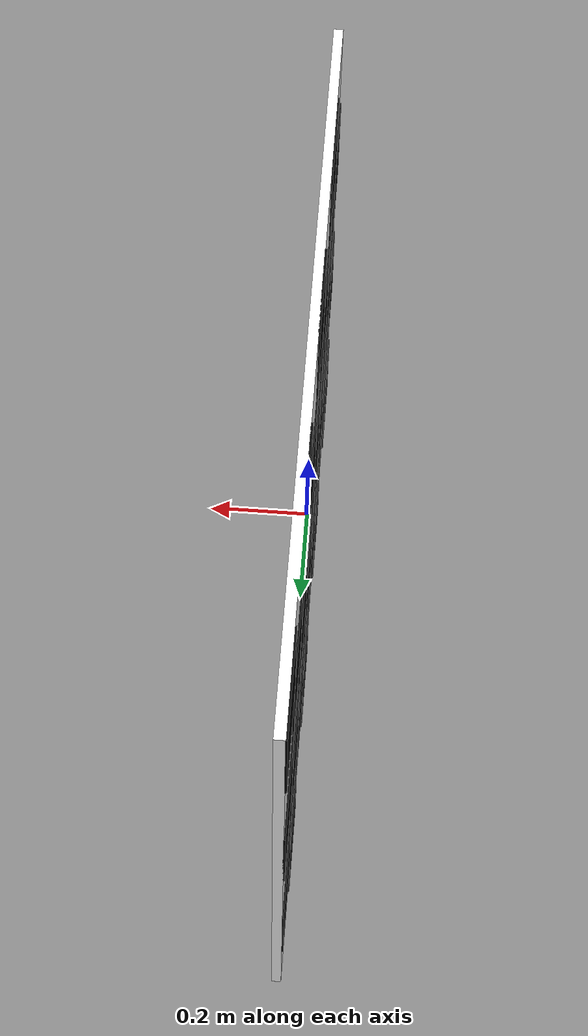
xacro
<?xml version="1.0"?>
<!-- The Gazebo model name is assigned by spawn_model; keep direct xacro usable. -->
<robot xmlns:xacro="http://www.ros.org/wiki/xacro" name="intrinsic_checkerboard">
  <xacro:arg name="model_name" default="intrinsic_checkerboard"/>
  <xacro:property name="s" value="0.20"/>
  <xacro:macro name="black_square" params="column row">
    <link name="checker_black_${column}_${row}">
      <inertial>
        <mass value="0.001"/>
        <inertia ixx="0.00000667" ixy="0" ixz="0"
                 iyy="0.00000334" iyz="0" izz="0.00000334"/>
      </inertial>
      <visual>
        <geometry><box size="0.004 ${s} ${s}"/></geometry>
        <material name="black"><color rgba="0.01 0.01 0.01 1"/></material>
      </visual>
    </link>
    <joint name="checker_black_${column}_${row}_joint" type="fixed">
      <parent link="board"/>
      <child link="checker_black_${column}_${row}"/>
      <origin xyz="-0.011 ${(-0.7 + 0.2*column)} ${(-0.5 + 0.2*row)}"/>
    </joint>
    <gazebo reference="checker_black_${column}_${row}">
      <material>Gazebo/Black</material>
    </gazebo>
    <gazebo reference="checker_black_${column}_${row}_joint">
      <preserveFixedJoint>true</preserveFixedJoint>
    </gazebo>
  </xacro:macro>

  <!-- Eight by six squares, i.e. seven by five internal calibration corners. -->
  <link name="board">
    <inertial><mass value="1.0"/><inertia ixx="0.2" ixy="0" ixz="0" iyy="0.2" iyz="0" izz="0.2"/></inertial>
    <visual>
      <geometry><box size="0.02 1.60 1.20"/></geometry>
      <material name="white"><color rgba="0.98 0.98 0.98 1"/></material>
    </visual>
    <collision><geometry><box size="0.02 1.60 1.20"/></geometry></collision>
  </link>
  <gazebo reference="board"><material>Gazebo/White</material></gazebo>

  <xacro:black_square column="0" row="0"/><xacro:black_square column="2" row="0"/><xacro:black_square column="4" row="0"/><xacro:black_square column="6" row="0"/>
  <xacro:black_square column="1" row="1"/><xacro:black_square column="3" row="1"/><xacro:black_square column="5" row="1"/><xacro:black_square column="7" row="1"/>
  <xacro:black_square column="0" row="2"/><xacro:black_square column="2" row="2"/><xacro:black_square column="4" row="2"/><xacro:black_square column="6" row="2"/>
  <xacro:black_square column="1" row="3"/><xacro:black_square column="3" row="3"/><xacro:black_square column="5" row="3"/><xacro:black_square column="7" row="3"/>
  <xacro:black_square column="0" row="4"/><xacro:black_square column="2" row="4"/><xacro:black_square column="4" row="4"/><xacro:black_square column="6" row="4"/>
  <xacro:black_square column="1" row="5"/><xacro:black_square column="3" row="5"/><xacro:black_square column="5" row="5"/><xacro:black_square column="7" row="5"/>
  <gazebo><static>true</static></gazebo>
</robot>
